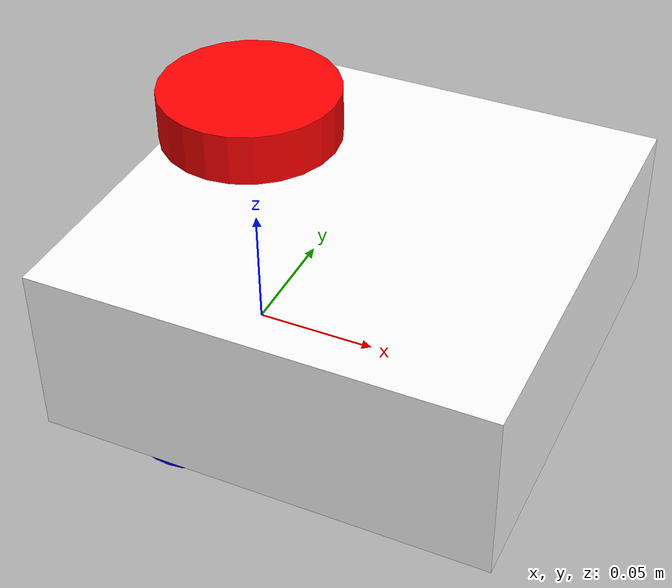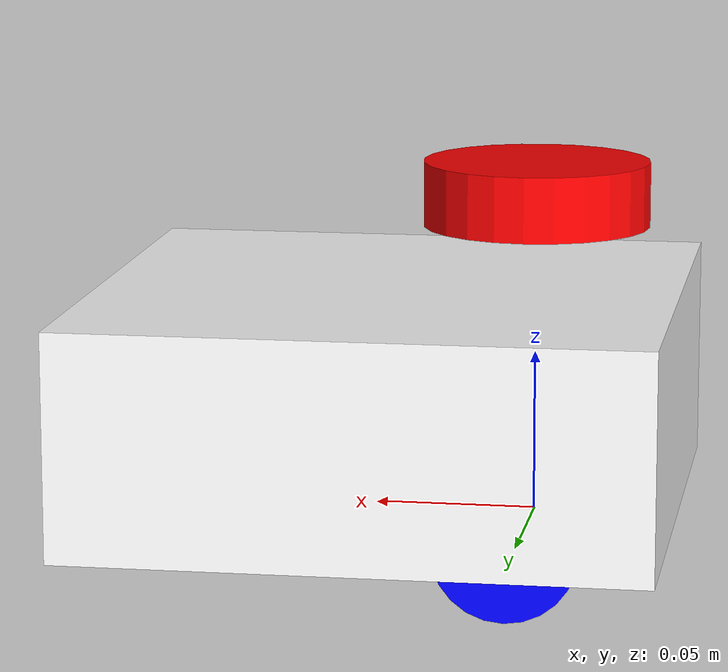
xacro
<?xml version="1.0"?>
<robot xmlns:xacro="http://www.ros.org/wiki/xacro"  name="robot">

    <xacro:include filename= "robot_core.xacro"/> <!--Base model of robo and wheels-->

    <xacro:include filename= "ros2_control_real.xacro"/>  <!--Real robot with ros2 control-->

    <xacro:include filename= "lidar.xacro"/> <!--lidar-->

</robot>

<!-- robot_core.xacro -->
<robot xmlns:xacro="http://www.ros.org/wiki/xacro">

<xacro:include filename="inertial_macros.xacro"/>

<material name="white">
    <color rgba="1 1 1 1" />
</material>

<material name="red">
    <color rgba="1 0 0 1" />
</material>

<material name="green">
    <color rgba="0 1 0 1" />
</material>

<material name="blue">
    <color rgba="0 0 1 1" />
</material>

<!--BASE LINK-->

<link name="base_link">

</link>

<!--BASE FOOTPRINT-->

<joint name="base_footprint_link" type="fixed">
    <parent link="base_link"/>
    <child link="base_footprint"/>
    <origin xyz="0.0 0.0 0.0" rpy="0.0 0.0 0.0"/>
</joint>

<link name="base_footprint">

</link>

<!--CHASSIS LINK-->

<joint name="chassis_joint" type="fixed">
    <parent link="base_link"/>
    <child link="chassis"/>
    <origin xyz= "-0.1 0 0"/>
</joint>

<link name="chassis">
    <visual>
        <origin  xyz="0.145 0 0.035"/>
        <geometry>
            <box size="0.18 0.18 0.07"/>
        </geometry>
        <material name="white">

        </material>
    </visual>

    <collision>
        <origin  xyz="0.145 0 0.035"/>
        <geometry>
            <box size="0.18 0.18 0.07"/>
        </geometry>
    </collision>
    <xacro:inertial_box mass="0.5" x="0.3" y="0.3" z="0.15">
        <origin xyz="0.15 0.0 0.075" rpy="0 0 0"/>
    </xacro:inertial_box>
</link>

<gazebo reference="chassis">
    <material>Gazebo/White</material>
</gazebo>

<!-- LEFT WHEEL LINK -->

<joint name="left_wheel_joint" type="continuous">
    <parent link="base_link"/>
    <child link="left_wheel"/>
    <origin xyz=" 0 0.07 0.007" rpy="-${pi/2} 0.0 0.0"/>
    <axis xyz="0.0 0.0 1"/>
</joint>

<link name="left_wheel">
    <visual>
        <geometry>
            <cylinder radius="0.022" length="0.018"/>
        </geometry>
        <material name="blue"/>
    </visual>

    <collision>
        <geometry>
            <cylinder radius="0.022" length="0.018"/>
        </geometry>
    </collision>
    <xacro:inertial_cylinder mass="0.02" radius="0.022" length="0.018">
        <origin xyz="0.0 0.0 0.0" rpy="0.0 0.0 0.0"/>
    </xacro:inertial_cylinder>
</link>

<gazebo reference="left_wheel">
    <material>Gazebo/Blue</material>
</gazebo>

<!-- RIGHT WHEEL LINK-->

<joint name="right_wheel_joint" type="continuous">
    <parent link="base_link"/>
    <child link="right_wheel"/>
    <origin xyz=" 0 -0.07 0.007" rpy="${pi/2} 0.0 0.0"/>
    <axis xyz="0.0 0.0 1"/>
</joint>

<link name="right_wheel">
    <visual>
        <geometry>
            <cylinder radius="0.022" length="0.018"/>
        </geometry>
        <material name="blue"/>
    </visual>

    <collision>
        <geometry>
            <cylinder radius="0.022" length="0.018"/>
        </geometry>
    </collision>
    <xacro:inertial_cylinder mass="0.02" radius="0.022" length="0.018">
        <origin xyz="0.0 0.0 0.0" rpy="0.0 0.0 0.0"/>
    </xacro:inertial_cylinder>
</link>

<gazebo reference="right_wheel">
    <material>Gazebo/Blue</material>
</gazebo>

<!--CASTER WHEEL LINK-->

<joint name="caster_wheel_joint" type="fixed">
    <parent link="chassis"/>
    <child link="caster_wheel"/>
    <origin xyz="0.2 0 0"/>
</joint>

<link name="caster_wheel">
    <visual>
        <geometry>
            <sphere radius="0.015"/>
        </geometry>
        <material name="green"/>
    </visual>

    <collision>
        <geometry>
            <sphere radius="0.015"/>
        </geometry>
    </collision>
    <xacro:inertial_sphere mass="0.02" radius="0.05">
        <origin xyz="0.0 0.0 0.0" rpy="0.0 0.0 0.0"/>
    </xacro:inertial_sphere>
</link>

<gazebo reference="caster_wheel">
    <material>Gazebo/Green</material>
    <mu1 value="0.001"/>
    <mu2 value="0.001"/>
</gazebo>

</robot>

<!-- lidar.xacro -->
<robot xmlns:xacro="http://www.ros.org/wiki/xacro" >

    <joint name="laser_joint" type="fixed">
        <parent link="chassis"/>
        <child link="laser_frame"/>
        <origin xyz="0.1 0 0.1" rpy="0 0 0"/>
    </joint>

    <link name="laser_frame">
        <visual>
            <geometry>
                <cylinder radius="0.035" length="0.02"/>
            </geometry>
            <material name="red"/>
        </visual>
        <collision>
            <geometry>
                <cylinder radius="0.035" length="0.02"/>
            </geometry>
        </collision>
        <xacro:inertial_cylinder mass="0.1" radius="0.035" length="0.02">
            <origin xyz="0 0 0" rpy="0 0 -${pi/2}"/>
        </xacro:inertial_cylinder>
    </link>

    <gazebo reference="laser_frame">
        <material>Gazebo/Red</material>

        <sensor name="laser" type="ray">
            <pose> 0 0 0 0 0 0 </pose>
            <visualize>false</visualize>
            <update_rate>10</update_rate>
            <ray>
                <scan>
                    <horizontal>
                        <samples>720</samples>
                        <min_angle>-3.14</min_angle>
                        <max_angle>3.14</max_angle>
                    </horizontal>
                </scan>
                <range>
                    <min>0.3</min>
                    <max>12</max>
                </range>
            </ray>
            <plugin name="laser_controller" filename="libgazebo_ros_ray_sensor.so">
                <ros>
                    <argument>~/out:=scan</argument>
                </ros>
                <output_type>sensor_msgs/LaserScan</output_type>
                <frame_name>laser_frame</frame_name>
            </plugin>
        </sensor>
    </gazebo>

</robot>
